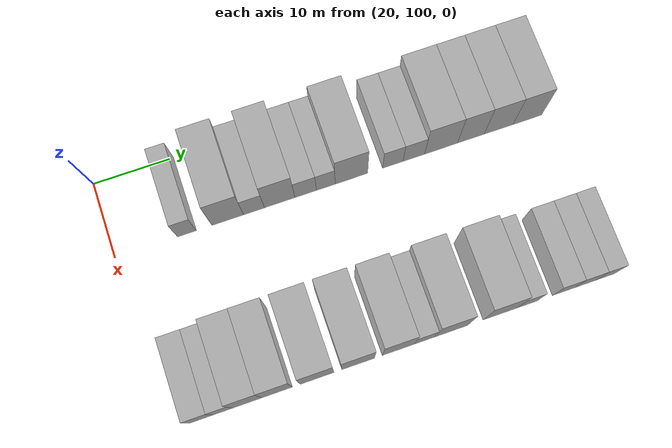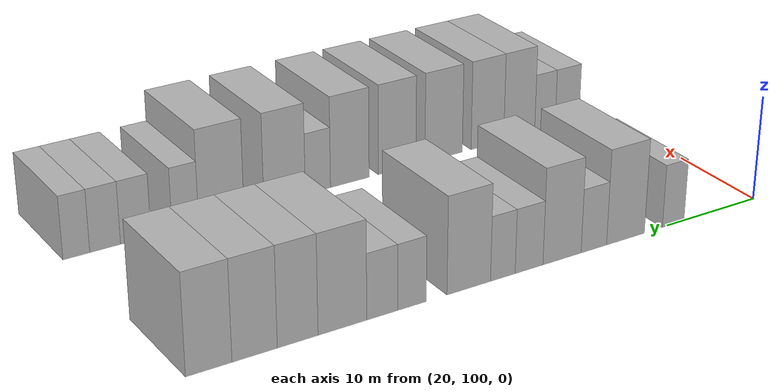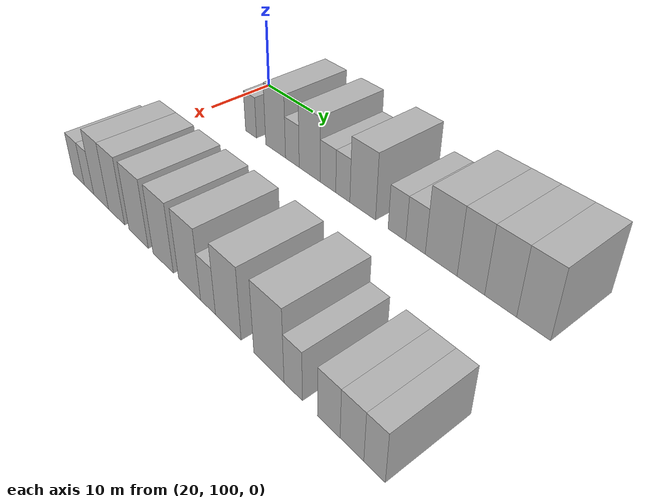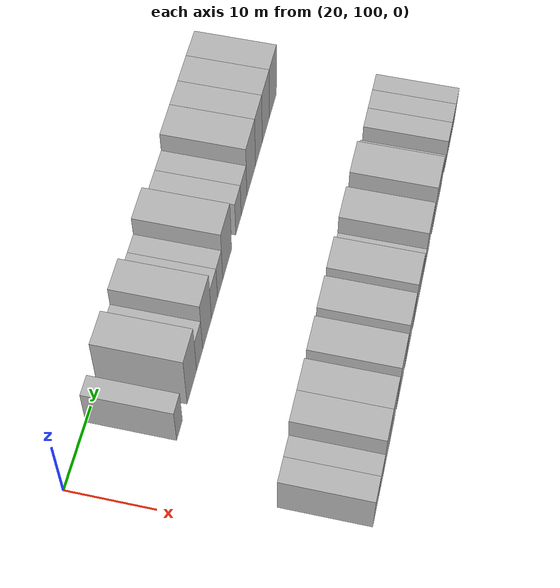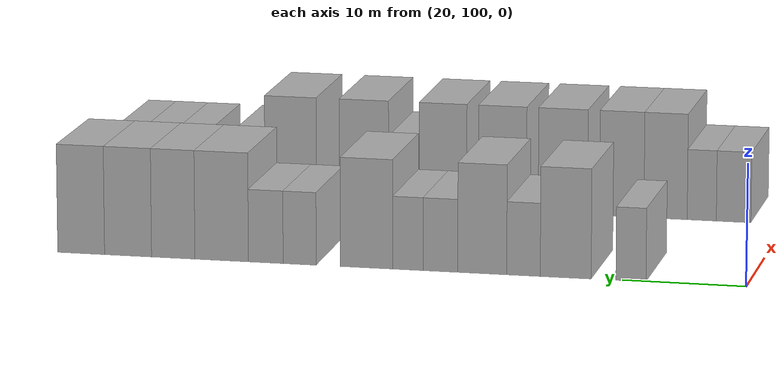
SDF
<sdf version="1.6">
 <world name="default">
  <model name="building_80">
   <static>1</static>
   <pose>25.0000 109.2987 0 0.000000 0.000000 0.000000</pose>
   <link name="link">
    <pose>0 0 3.00 0 0 0</pose>
    <collision name="collision"><geometry><box><size>10.0000 2.4277 6.0000</size></box></geometry></collision>
    <visual name="visual">
     <cast_shadows>0</cast_shadows>
     <geometry><box><size>10.0000 2.4277 6.0000</size></box></geometry>
     <material>
      <script>
       <uri>model://HANNAS_wall/materials/scripts</uri>
       <uri>model://HANNAS_wall/materials/textures</uri>
       <name>vrc/HANNAS_wall</name>
      </script>
     </material>
    </visual>
   </link>
  </model>
  <model name="building_81">
   <static>1</static>
   <pose>25.0000 114.5746 0 0.000000 0.000000 0.000000</pose>
   <link name="link">
    <pose>0 0 4.50 0 0 0</pose>
    <collision name="collision"><geometry><box><size>10.0000 4.1242 9.0000</size></box></geometry></collision>
    <visual name="visual">
     <cast_shadows>0</cast_shadows>
     <geometry><box><size>10.0000 4.1242 9.0000</size></box></geometry>
     <material>
      <script>
       <uri>model://HANNAS_wall/materials/scripts</uri>
       <uri>model://HANNAS_wall/materials/textures</uri>
       <name>vrc/HANNAS_wall</name>
      </script>
     </material>
    </visual>
   </link>
  </model>
  <model name="building_82">
   <static>1</static>
   <pose>25.0000 117.9998 0 0.000000 0.000000 0.000000</pose>
   <link name="link">
    <pose>0 0 3.00 0 0 0</pose>
    <collision name="collision"><geometry><box><size>10.0000 2.7262 6.0000</size></box></geometry></collision>
    <visual name="visual">
     <cast_shadows>0</cast_shadows>
     <geometry><box><size>10.0000 2.7262 6.0000</size></box></geometry>
     <material>
      <script>
       <uri>model://HANNAS_wall/materials/scripts</uri>
       <uri>model://HANNAS_wall/materials/textures</uri>
       <name>vrc/HANNAS_wall</name>
      </script>
     </material>
    </visual>
   </link>
  </model>
  <model name="building_83">
   <static>1</static>
   <pose>25.0000 121.3579 0 0.000000 0.000000 0.000000</pose>
   <link name="link">
    <pose>0 0 4.50 0 0 0</pose>
    <collision name="collision"><geometry><box><size>10.0000 3.9899 9.0000</size></box></geometry></collision>
    <visual name="visual">
     <cast_shadows>0</cast_shadows>
     <geometry><box><size>10.0000 3.9899 9.0000</size></box></geometry>
     <material>
      <script>
       <uri>model://HANNAS_wall/materials/scripts</uri>
       <uri>model://HANNAS_wall/materials/textures</uri>
       <name>vrc/HANNAS_wall</name>
      </script>
     </material>
    </visual>
   </link>
  </model>
  <model name="building_84">
   <static>1</static>
   <pose>25.0000 124.7776 0 0.000000 0.000000 0.000000</pose>
   <link name="link">
    <pose>0 0 3.00 0 0 0</pose>
    <collision name="collision"><geometry><box><size>10.0000 2.8494 6.0000</size></box></geometry></collision>
    <visual name="visual">
     <cast_shadows>0</cast_shadows>
     <geometry><box><size>10.0000 2.8494 6.0000</size></box></geometry>
     <material>
      <script>
       <uri>model://HANNAS_wall/materials/scripts</uri>
       <uri>model://HANNAS_wall/materials/textures</uri>
       <name>vrc/HANNAS_wall</name>
      </script>
     </material>
    </visual>
   </link>
  </model>
  <model name="building_85">
   <static>1</static>
   <pose>25.0000 127.4439 0 0.000000 0.000000 0.000000</pose>
   <link name="link">
    <pose>0 0 3.00 0 0 0</pose>
    <collision name="collision"><geometry><box><size>10.0000 2.4832 6.0000</size></box></geometry></collision>
    <visual name="visual">
     <cast_shadows>0</cast_shadows>
     <geometry><box><size>10.0000 2.4832 6.0000</size></box></geometry>
     <material>
      <script>
       <uri>model://HANNAS_wall/materials/scripts</uri>
       <uri>model://HANNAS_wall/materials/textures</uri>
       <name>vrc/HANNAS_wall</name>
      </script>
     </material>
    </visual>
   </link>
  </model>
  <model name="building_86">
   <static>1</static>
   <pose>25.0000 130.8366 0 0.000000 0.000000 0.000000</pose>
   <link name="link">
    <pose>0 0 4.50 0 0 0</pose>
    <collision name="collision"><geometry><box><size>10.0000 4.3023 9.0000</size></box></geometry></collision>
    <visual name="visual">
     <cast_shadows>0</cast_shadows>
     <geometry><box><size>10.0000 4.3023 9.0000</size></box></geometry>
     <material>
      <script>
       <uri>model://HANNAS_wall/materials/scripts</uri>
       <uri>model://HANNAS_wall/materials/textures</uri>
       <name>vrc/HANNAS_wall</name>
      </script>
     </material>
    </visual>
   </link>
  </model>
  <model name="building_87">
   <static>1</static>
   <pose>25.0000 136.3557 0 0.000000 0.000000 0.000000</pose>
   <link name="link">
    <pose>0 0 3.00 0 0 0</pose>
    <collision name="collision"><geometry><box><size>10.0000 2.7359 6.0000</size></box></geometry></collision>
    <visual name="visual">
     <cast_shadows>0</cast_shadows>
     <geometry><box><size>10.0000 2.7359 6.0000</size></box></geometry>
     <material>
      <script>
       <uri>model://HANNAS_wall/materials/scripts</uri>
       <uri>model://HANNAS_wall/materials/textures</uri>
       <name>vrc/HANNAS_wall</name>
      </script>
     </material>
    </visual>
   </link>
  </model>
  <model name="building_88">
   <static>1</static>
   <pose>25.0000 139.1639 0 0.000000 0.000000 0.000000</pose>
   <link name="link">
    <pose>0 0 3.00 0 0 0</pose>
    <collision name="collision"><geometry><box><size>10.0000 2.8805 6.0000</size></box></geometry></collision>
    <visual name="visual">
     <cast_shadows>0</cast_shadows>
     <geometry><box><size>10.0000 2.8805 6.0000</size></box></geometry>
     <material>
      <script>
       <uri>model://HANNAS_wall/materials/scripts</uri>
       <uri>model://HANNAS_wall/materials/textures</uri>
       <name>vrc/HANNAS_wall</name>
      </script>
     </material>
    </visual>
   </link>
  </model>
  <model name="building_89">
   <static>1</static>
   <pose>25.0000 142.8288 0 0.000000 0.000000 0.000000</pose>
   <link name="link">
    <pose>0 0 4.50 0 0 0</pose>
    <collision name="collision"><geometry><box><size>10.0000 4.4494 9.0000</size></box></geometry></collision>
    <visual name="visual">
     <cast_shadows>0</cast_shadows>
     <geometry><box><size>10.0000 4.4494 9.0000</size></box></geometry>
     <material>
      <script>
       <uri>model://HANNAS_wall/materials/scripts</uri>
       <uri>model://HANNAS_wall/materials/textures</uri>
       <name>vrc/HANNAS_wall</name>
      </script>
     </material>
    </visual>
   </link>
  </model>
  <model name="building_90">
   <static>1</static>
   <pose>25.0000 146.8652 0 0.000000 0.000000 0.000000</pose>
   <link name="link">
    <pose>0 0 4.50 0 0 0</pose>
    <collision name="collision"><geometry><box><size>10.0000 3.6233 9.0000</size></box></geometry></collision>
    <visual name="visual">
     <cast_shadows>0</cast_shadows>
     <geometry><box><size>10.0000 3.6233 9.0000</size></box></geometry>
     <material>
      <script>
       <uri>model://HANNAS_wall/materials/scripts</uri>
       <uri>model://HANNAS_wall/materials/textures</uri>
       <name>vrc/HANNAS_wall</name>
      </script>
     </material>
    </visual>
   </link>
  </model>
  <model name="building_91">
   <static>1</static>
   <pose>25.0000 150.6443 0 0.000000 0.000000 0.000000</pose>
   <link name="link">
    <pose>0 0 4.50 0 0 0</pose>
    <collision name="collision"><geometry><box><size>10.0000 3.9351 9.0000</size></box></geometry></collision>
    <visual name="visual">
     <cast_shadows>0</cast_shadows>
     <geometry><box><size>10.0000 3.9351 9.0000</size></box></geometry>
     <material>
      <script>
       <uri>model://HANNAS_wall/materials/scripts</uri>
       <uri>model://HANNAS_wall/materials/textures</uri>
       <name>vrc/HANNAS_wall</name>
      </script>
     </material>
    </visual>
   </link>
  </model>
  <model name="building_92">
   <static>1</static>
   <pose>25.0000 154.5795 0 0.000000 0.000000 0.000000</pose>
   <link name="link">
    <pose>0 0 4.50 0 0 0</pose>
    <collision name="collision"><geometry><box><size>10.0000 3.9353 9.0000</size></box></geometry></collision>
    <visual name="visual">
     <cast_shadows>0</cast_shadows>
     <geometry><box><size>10.0000 3.9353 9.0000</size></box></geometry>
     <material>
      <script>
       <uri>model://HANNAS_wall/materials/scripts</uri>
       <uri>model://HANNAS_wall/materials/textures</uri>
       <name>vrc/HANNAS_wall</name>
      </script>
     </material>
    </visual>
   </link>
  </model>
  <model name="building_186">
   <static>1</static>
   <pose>47.0000 104.4157 0 0.000000 0.000000 0.000000</pose>
   <link name="link">
    <pose>0 0 3.00 0 0 0</pose>
    <collision name="collision"><geometry><box><size>10.0000 2.9102 6.0000</size></box></geometry></collision>
    <visual name="visual">
     <cast_shadows>0</cast_shadows>
     <geometry><box><size>10.0000 2.9102 6.0000</size></box></geometry>
     <material>
      <script>
       <uri>model://HANNAS_wall/materials/scripts</uri>
       <uri>model://HANNAS_wall/materials/textures</uri>
       <name>vrc/HANNAS_wall</name>
      </script>
     </material>
    </visual>
   </link>
  </model>
  <model name="building_187">
   <static>1</static>
   <pose>47.0000 107.0974 0 0.000000 0.000000 0.000000</pose>
   <link name="link">
    <pose>0 0 3.00 0 0 0</pose>
    <collision name="collision"><geometry><box><size>10.0000 2.4532 6.0000</size></box></geometry></collision>
    <visual name="visual">
     <cast_shadows>0</cast_shadows>
     <geometry><box><size>10.0000 2.4532 6.0000</size></box></geometry>
     <material>
      <script>
       <uri>model://HANNAS_wall/materials/scripts</uri>
       <uri>model://HANNAS_wall/materials/textures</uri>
       <name>vrc/HANNAS_wall</name>
      </script>
     </material>
    </visual>
   </link>
  </model>
  <model name="building_188">
   <static>1</static>
   <pose>47.0000 110.1514 0 0.000000 0.000000 0.000000</pose>
   <link name="link">
    <pose>0 0 4.50 0 0 0</pose>
    <collision name="collision"><geometry><box><size>10.0000 3.6549 9.0000</size></box></geometry></collision>
    <visual name="visual">
     <cast_shadows>0</cast_shadows>
     <geometry><box><size>10.0000 3.6549 9.0000</size></box></geometry>
     <material>
      <script>
       <uri>model://HANNAS_wall/materials/scripts</uri>
       <uri>model://HANNAS_wall/materials/textures</uri>
       <name>vrc/HANNAS_wall</name>
      </script>
     </material>
    </visual>
   </link>
  </model>
  <model name="building_189">
   <static>1</static>
   <pose>47.0000 113.8648 0 0.000000 0.000000 0.000000</pose>
   <link name="link">
    <pose>0 0 4.50 0 0 0</pose>
    <collision name="collision"><geometry><box><size>10.0000 3.7719 9.0000</size></box></geometry></collision>
    <visual name="visual">
     <cast_shadows>0</cast_shadows>
     <geometry><box><size>10.0000 3.7719 9.0000</size></box></geometry>
     <material>
      <script>
       <uri>model://HANNAS_wall/materials/scripts</uri>
       <uri>model://HANNAS_wall/materials/textures</uri>
       <name>vrc/HANNAS_wall</name>
      </script>
     </material>
    </visual>
   </link>
  </model>
  <model name="building_190">
   <static>1</static>
   <pose>47.0000 118.8554 0 0.000000 0.000000 0.000000</pose>
   <link name="link">
    <pose>0 0 4.50 0 0 0</pose>
    <collision name="collision"><geometry><box><size>10.0000 4.2092 9.0000</size></box></geometry></collision>
    <visual name="visual">
     <cast_shadows>0</cast_shadows>
     <geometry><box><size>10.0000 4.2092 9.0000</size></box></geometry>
     <material>
      <script>
       <uri>model://HANNAS_wall/materials/scripts</uri>
       <uri>model://HANNAS_wall/materials/textures</uri>
       <name>vrc/HANNAS_wall</name>
      </script>
     </material>
    </visual>
   </link>
  </model>
  <model name="building_191">
   <static>1</static>
   <pose>47.0000 124.0169 0 0.000000 0.000000 0.000000</pose>
   <link name="link">
    <pose>0 0 4.50 0 0 0</pose>
    <collision name="collision"><geometry><box><size>10.0000 4.1139 9.0000</size></box></geometry></collision>
    <visual name="visual">
     <cast_shadows>0</cast_shadows>
     <geometry><box><size>10.0000 4.1139 9.0000</size></box></geometry>
     <material>
      <script>
       <uri>model://HANNAS_wall/materials/scripts</uri>
       <uri>model://HANNAS_wall/materials/textures</uri>
       <name>vrc/HANNAS_wall</name>
      </script>
     </material>
    </visual>
   </link>
  </model>
  <model name="building_192">
   <static>1</static>
   <pose>47.0000 129.1223 0 0.000000 0.000000 0.000000</pose>
   <link name="link">
    <pose>0 0 4.50 0 0 0</pose>
    <collision name="collision"><geometry><box><size>10.0000 4.0970 9.0000</size></box></geometry></collision>
    <visual name="visual">
     <cast_shadows>0</cast_shadows>
     <geometry><box><size>10.0000 4.0970 9.0000</size></box></geometry>
     <material>
      <script>
       <uri>model://HANNAS_wall/materials/scripts</uri>
       <uri>model://HANNAS_wall/materials/textures</uri>
       <name>vrc/HANNAS_wall</name>
      </script>
     </material>
    </visual>
   </link>
  </model>
  <model name="building_193">
   <static>1</static>
   <pose>47.0000 132.4856 0 0.000000 0.000000 0.000000</pose>
   <link name="link">
    <pose>0 0 3.00 0 0 0</pose>
    <collision name="collision"><geometry><box><size>10.0000 2.6296 6.0000</size></box></geometry></collision>
    <visual name="visual">
     <cast_shadows>0</cast_shadows>
     <geometry><box><size>10.0000 2.6296 6.0000</size></box></geometry>
     <material>
      <script>
       <uri>model://HANNAS_wall/materials/scripts</uri>
       <uri>model://HANNAS_wall/materials/textures</uri>
       <name>vrc/HANNAS_wall</name>
      </script>
     </material>
    </visual>
   </link>
  </model>
  <model name="building_194">
   <static>1</static>
   <pose>47.0000 135.9206 0 0.000000 0.000000 0.000000</pose>
   <link name="link">
    <pose>0 0 4.50 0 0 0</pose>
    <collision name="collision"><geometry><box><size>10.0000 4.2405 9.0000</size></box></geometry></collision>
    <visual name="visual">
     <cast_shadows>0</cast_shadows>
     <geometry><box><size>10.0000 4.2405 9.0000</size></box></geometry>
     <material>
      <script>
       <uri>model://HANNAS_wall/materials/scripts</uri>
       <uri>model://HANNAS_wall/materials/textures</uri>
       <name>vrc/HANNAS_wall</name>
      </script>
     </material>
    </visual>
   </link>
  </model>
  <model name="building_195">
   <static>1</static>
   <pose>47.0000 142.2796 0 0.000000 0.000000 0.000000</pose>
   <link name="link">
    <pose>0 0 4.50 0 0 0</pose>
    <collision name="collision"><geometry><box><size>10.0000 4.4774 9.0000</size></box></geometry></collision>
    <visual name="visual">
     <cast_shadows>0</cast_shadows>
     <geometry><box><size>10.0000 4.4774 9.0000</size></box></geometry>
     <material>
      <script>
       <uri>model://HANNAS_wall/materials/scripts</uri>
       <uri>model://HANNAS_wall/materials/textures</uri>
       <name>vrc/HANNAS_wall</name>
      </script>
     </material>
    </visual>
   </link>
  </model>
  <model name="building_196">
   <static>1</static>
   <pose>47.0000 145.7974 0 0.000000 0.000000 0.000000</pose>
   <link name="link">
    <pose>0 0 3.00 0 0 0</pose>
    <collision name="collision"><geometry><box><size>10.0000 2.5583 6.0000</size></box></geometry></collision>
    <visual name="visual">
     <cast_shadows>0</cast_shadows>
     <geometry><box><size>10.0000 2.5583 6.0000</size></box></geometry>
     <material>
      <script>
       <uri>model://HANNAS_wall/materials/scripts</uri>
       <uri>model://HANNAS_wall/materials/textures</uri>
       <name>vrc/HANNAS_wall</name>
      </script>
     </material>
    </visual>
   </link>
  </model>
  <model name="building_197">
   <static>1</static>
   <pose>47.0000 150.5109 0 0.000000 0.000000 0.000000</pose>
   <link name="link">
    <pose>0 0 3.00 0 0 0</pose>
    <collision name="collision"><geometry><box><size>10.0000 2.8687 6.0000</size></box></geometry></collision>
    <visual name="visual">
     <cast_shadows>0</cast_shadows>
     <geometry><box><size>10.0000 2.8687 6.0000</size></box></geometry>
     <material>
      <script>
       <uri>model://HANNAS_wall/materials/scripts</uri>
       <uri>model://HANNAS_wall/materials/textures</uri>
       <name>vrc/HANNAS_wall</name>
      </script>
     </material>
    </visual>
   </link>
  </model>
  <model name="building_198">
   <static>1</static>
   <pose>47.0000 153.3639 0 0.000000 0.000000 0.000000</pose>
   <link name="link">
    <pose>0 0 3.00 0 0 0</pose>
    <collision name="collision"><geometry><box><size>10.0000 2.8373 6.0000</size></box></geometry></collision>
    <visual name="visual">
     <cast_shadows>0</cast_shadows>
     <geometry><box><size>10.0000 2.8373 6.0000</size></box></geometry>
     <material>
      <script>
       <uri>model://HANNAS_wall/materials/scripts</uri>
       <uri>model://HANNAS_wall/materials/textures</uri>
       <name>vrc/HANNAS_wall</name>
      </script>
     </material>
    </visual>
   </link>
  </model>
  <model name="building_199">
   <static>1</static>
   <pose>47.0000 156.0045 0 0.000000 0.000000 0.000000</pose>
   <link name="link">
    <pose>0 0 3.00 0 0 0</pose>
    <collision name="collision"><geometry><box><size>10.0000 2.4439 6.0000</size></box></geometry></collision>
    <visual name="visual">
     <cast_shadows>0</cast_shadows>
     <geometry><box><size>10.0000 2.4439 6.0000</size></box></geometry>
     <material>
      <script>
       <uri>model://HANNAS_wall/materials/scripts</uri>
       <uri>model://HANNAS_wall/materials/textures</uri>
       <name>vrc/HANNAS_wall</name>
      </script>
     </material>
    </visual>
   </link>
  </model>
 </world>
</sdf>
